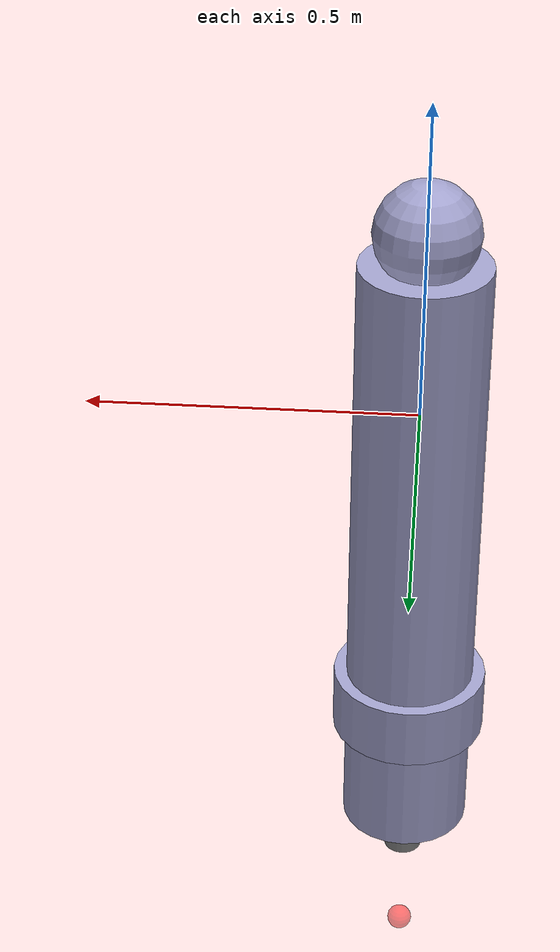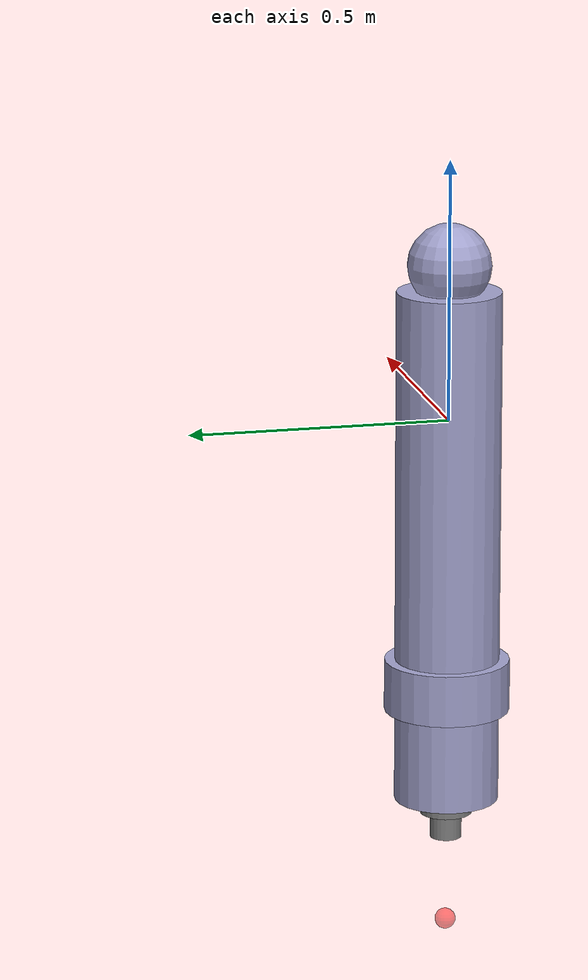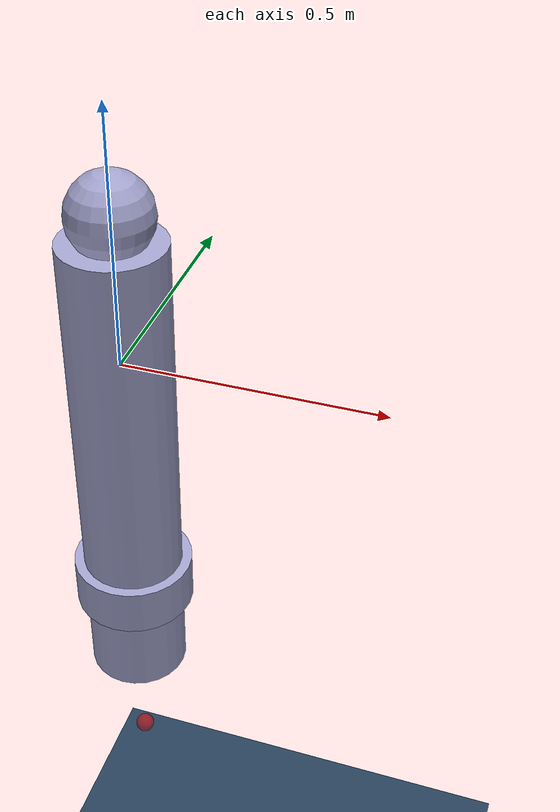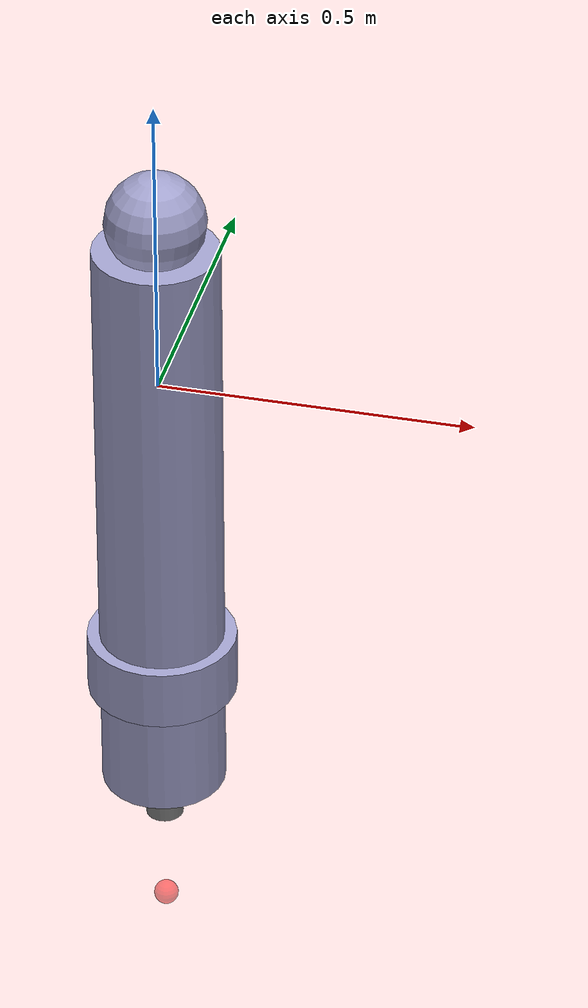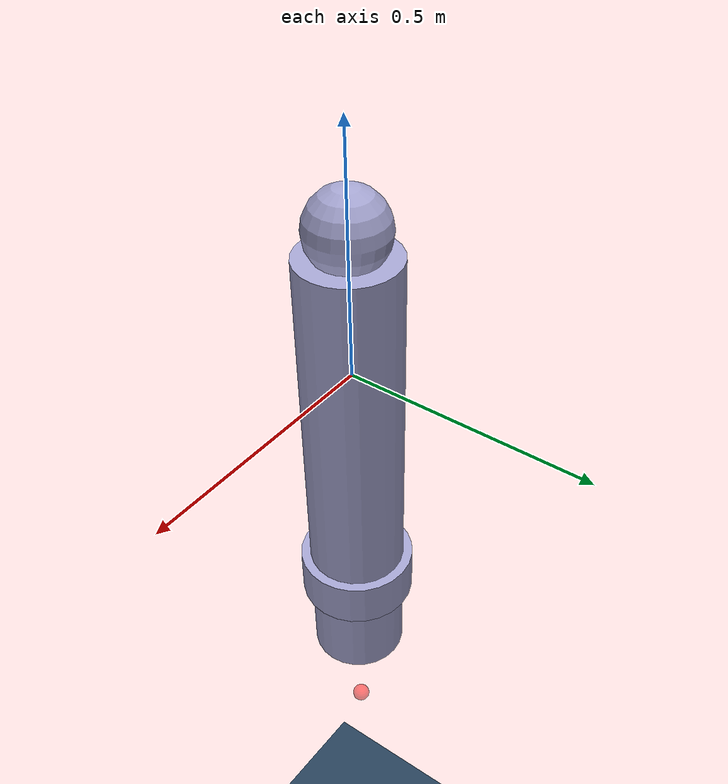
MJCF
<?xml version="1.0" ?>
<mujoco model="athena_tvc">
    <compiler angle="radian" coordinate="local" inertiafromgeom="true"/>

    <option gravity="0 0 -9.81" timestep="0.001" integrator="RK4">
        <flag warmstart="enable" energy="enable"/>
    </option>

    <!-- Assets for visualization -->
    <asset>
        <!-- Textures -->
        <texture name="grid" type="2d" builtin="checker" width="300" height="300" rgb1="0.1 0.2 0.3" rgb2="0.2 0.3 0.4"/>
        <texture name="rocket_tex" type="cube" builtin="flat" mark="cross" width="100" height="100" rgb1="0.8 0.8 0.9" rgb2="0.7 0.7 0.8"/>
        <texture name="gimbal_tex" type="cube" builtin="flat" mark="random" width="100" height="100" rgb1="0.9 0.5 0.1" rgb2="0.8 0.4 0.0"/>
        <texture name="actuator_tex" type="cube" builtin="flat" width="50" height="50" rgb1="0.3 0.3 0.8" rgb2="0.2 0.2 0.7"/>

        <!-- Materials -->
        <material name="grid" texture="grid" texrepeat="8 8" reflectance="0.2"/>
        <material name="rocket" texture="rocket_tex" rgba="0.8 0.8 0.9 1"/>
        <material name="gimbal" texture="gimbal_tex" rgba="0.9 0.5 0.1 1"/>
        <material name="actuator" texture="actuator_tex" rgba="0.3 0.3 0.8 1"/>
        <material name="thrust_nozzle" rgba="0.5 0.5 0.5 1"/>
        <material name="transparent" rgba="1 1 1 0.3"/>
    </asset>

    <!-- Default values for physical properties -->
    <default>
        <joint limited="true" damping="0.05" stiffness="0" frictionloss="0.01"/>
        <geom material="rocket" condim="3" friction="1 0.005 0.0001"/>
        <motor ctrllimited="true" forcelimited="true"/>
        <position ctrllimited="true" kp="10" forcelimited="true"/>
    </default>

    <worldbody>
        <!-- Ground plane -->
        <geom name="floor" pos="0 0 -2" size="10 10 0.1" type="plane" material="grid"/>

        <!-- Rocket body (main structure) -->
        <body name="rocket_body" pos="0 0 0">
            <inertial pos="0 0 -0.25" mass="5.0" diaginertia="0.2 0.2 0.05"/>

            <!-- Main rocket cylinder -->
            <geom name="rocket_main" type="cylinder" size="0.1 0.5" pos="0 0 -0.25" material="rocket"/>

            <!-- Rocket nose cone -->
            <geom name="rocket_nose" type="sphere" size="0.08" pos="0 0 0.3" material="rocket"/>

            <!-- Engine mount (bottom of rocket) -->
            <geom name="engine_mount" type="cylinder" size="0.12 0.05" pos="0 0 -0.52" material="rocket"/>

            <!-- Gimbal assembly -->
            <body name="gimbal_base" pos="0 0 -0.57">
                <inertial pos="0 0 0" mass="0.5" diaginertia="0.01 0.01 0.01"/>

                <!-- Gimbal base ring -->
                <geom name="gimbal_ring" type="cylinder" size="0.08 0.02" material="gimbal"/>

                <!-- Gimbal mechanism - pitch joint -->
                <joint name="gimbal_pitch" type="hinge" axis="1 0 0" range="-0.15 0.15" pos="0 0 0"/>

                <!-- Inner gimbal for yaw -->
                <body name="gimbal_inner" pos="0 0 -0.03">
                    <inertial pos="0 0 -0.1" mass="2.0" diaginertia="0.05 0.05 0.02"/>

                    <!-- Yaw joint -->
                    <joint name="gimbal_yaw" type="hinge" axis="0 1 0" range="-0.15 0.15" pos="0 0 0"/>

                    <!-- Inner gimbal ring -->
                    <geom name="gimbal_inner_ring" type="cylinder" size="0.06 0.015" material="gimbal"/>

                    <!-- Engine/nozzle assembly -->
                    <body name="engine" pos="0 0 -0.1">
                        <inertial pos="0 0 -0.05" mass="2.0" diaginertia="0.02 0.02 0.01"/>

                        <!-- Engine body -->
                        <geom name="engine_body" type="cylinder" size="0.05 0.08" material="thrust_nozzle"/>

                        <!-- Thrust nozzle -->
                        <geom name="nozzle" type="cylinder" size="0.03 0.03" pos="0 0 -0.1" material="thrust_nozzle"/>

                        <!-- Thrust vector visualization (invisible force application point) -->
                        <site name="thrust_point" pos="0 0 -0.13" size="0.01" rgba="1 0 0 0.5"/>
                    </body>
                </body>

                <!-- Actuator mounting points on gimbal base -->
                <site name="actuator_mount_0" pos="0.08 0 0" size="0.005" rgba="0 1 0 1"/>
                <site name="actuator_mount_1" pos="-0.04 0.0693 0" size="0.005" rgba="0 1 0 1"/>
                <site name="actuator_mount_2" pos="-0.04 -0.0693 0" size="0.005" rgba="0 1 0 1"/>
            </body>

            <!-- Actuator 1 (0 degrees) -->
            <body name="actuator_base_0" pos="0.08 0 -0.47">
                <inertial pos="0 0 0" mass="0.1" diaginertia="0.001 0.001 0.001"/>
                <geom name="actuator_base_0_geom" type="cylinder" size="0.01 0.02" material="actuator"/>

                <body name="actuator_rod_0" pos="0 0 0.05">
                    <inertial pos="0 0 0.03" mass="0.2" diaginertia="0.002 0.002 0.0001"/>
                    <joint name="actuator_0" type="slide" axis="0 0 1" range="0.08 0.12" pos="0 0 0"/>
                    <geom name="actuator_rod_0_geom" type="cylinder" size="0.008 0.03" material="actuator"/>
                </body>
            </body>

            <!-- Actuator 2 (120 degrees) -->
            <body name="actuator_base_1" pos="-0.04 0.0693 -0.47">
                <inertial pos="0 0 0" mass="0.1" diaginertia="0.001 0.001 0.001"/>
                <geom name="actuator_base_1_geom" type="cylinder" size="0.01 0.02" material="actuator"/>

                <body name="actuator_rod_1" pos="0 0 0.05">
                    <inertial pos="0 0 0.03" mass="0.2" diaginertia="0.002 0.002 0.0001"/>
                    <joint name="actuator_1" type="slide" axis="0 0 1" range="0.08 0.12" pos="0 0 0"/>
                    <geom name="actuator_rod_1_geom" type="cylinder" size="0.008 0.03" material="actuator"/>
                </body>
            </body>

            <!-- Actuator 3 (240 degrees) -->
            <body name="actuator_base_2" pos="-0.04 -0.0693 -0.47">
                <inertial pos="0 0 0" mass="0.1" diaginertia="0.001 0.001 0.001"/>
                <geom name="actuator_base_2_geom" type="cylinder" size="0.01 0.02" material="actuator"/>

                <body name="actuator_rod_2" pos="0 0 0.05">
                    <inertial pos="0 0 0.03" mass="0.2" diaginertia="0.002 0.002 0.0001"/>
                    <joint name="actuator_2" type="slide" axis="0 0 1" range="0.08 0.12" pos="0 0 0"/>
                    <geom name="actuator_rod_2_geom" type="cylinder" size="0.008 0.03" material="actuator"/>
                </body>
            </body>
        </body>

        <!-- External thrust source (for testing) -->
        <body name="thrust_source" pos="0 0 -1" mocap="true">
            <geom name="thrust_viz" type="sphere" size="0.02" rgba="1 0 0 0.5"/>
        </body>
    </worldbody>

    <!-- Actuators (motors) -->
    <actuator>
        <!-- Linear actuators -->
        <position name="actuator_ctrl_0" joint="actuator_0" ctrlrange="0.08 0.12" forcerange="-100 100" kp="1000"/>
        <position name="actuator_ctrl_1" joint="actuator_1" ctrlrange="0.08 0.12" forcerange="-100 100" kp="1000"/>
        <position name="actuator_ctrl_2" joint="actuator_2" ctrlrange="0.08 0.12" forcerange="-100 100" kp="1000"/>
    </actuator>

    <!-- Sensors -->
    <sensor>
        <!-- Joint positions -->
        <jointpos name="gimbal_pitch_pos" joint="gimbal_pitch"/>
        <jointpos name="gimbal_yaw_pos" joint="gimbal_yaw"/>

        <!-- Joint velocities -->
        <jointvel name="gimbal_pitch_vel" joint="gimbal_pitch"/>
        <jointvel name="gimbal_yaw_vel" joint="gimbal_yaw"/>

        <!-- Actuator positions -->
        <jointpos name="actuator_0_pos" joint="actuator_0"/>
        <jointpos name="actuator_1_pos" joint="actuator_1"/>
        <jointpos name="actuator_2_pos" joint="actuator_2"/>

        <!-- Body orientation (rocket attitude) -->
        <framequat name="rocket_orientation" objtype="body" objname="rocket_body"/>

        <!-- Body position and velocity -->
        <framepos name="rocket_position" objtype="body" objname="rocket_body"/>
        <framelinvel name="rocket_velocity" objtype="body" objname="rocket_body"/>
        <frameangvel name="rocket_angular_velocity" objtype="body" objname="rocket_body"/>

        <!-- Thrust point for force application -->
        <framepos name="thrust_point_pos" objtype="site" objname="thrust_point"/>
        <framequat name="thrust_point_orientation" objtype="site" objname="thrust_point"/>
    </sensor>
</mujoco>
